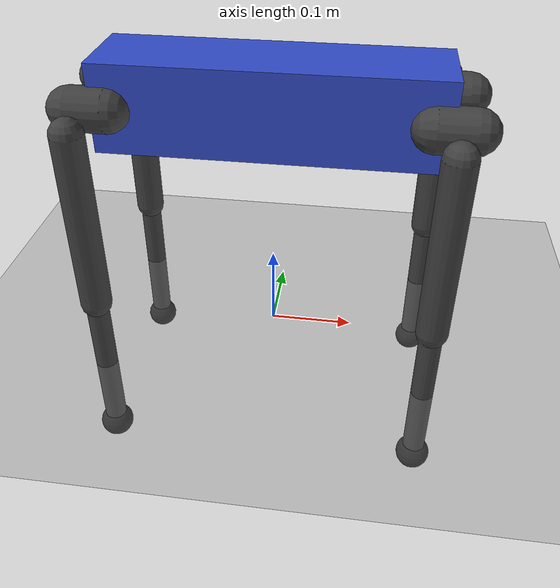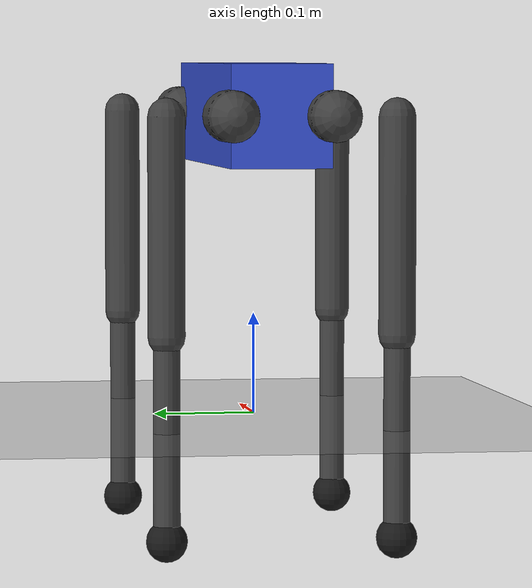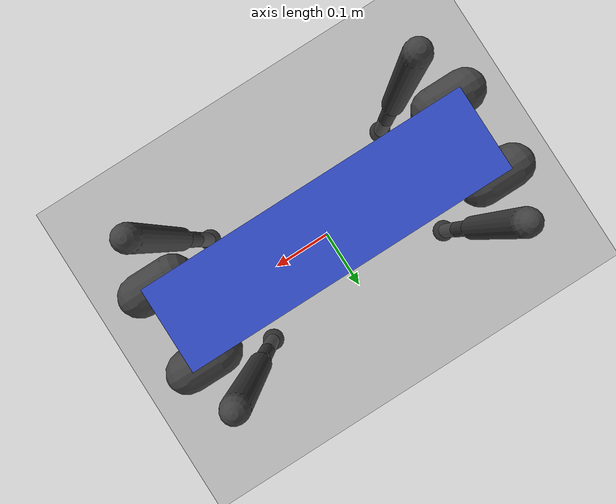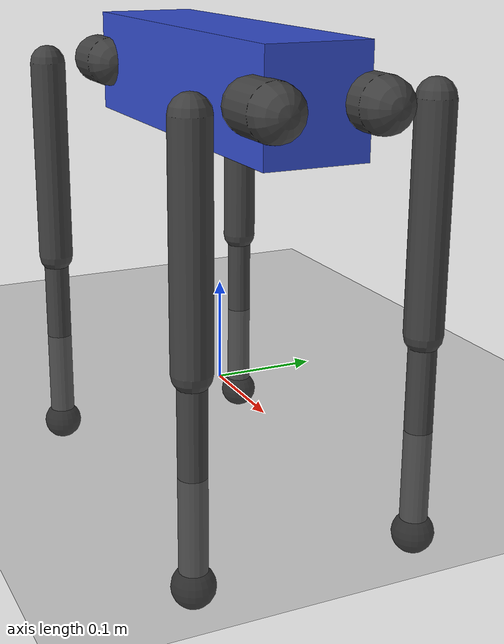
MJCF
<?xml version="1.0" encoding="utf-8"?>
<mujoco model="mini_cheetah">
  <compiler angle="radian" autolimits="true" balanceinertia="true"/>

  <option timestep="0.002" gravity="0 0 -9.81" iterations="50" solver="Newton" cone="elliptic"/>

  <visual>
    <headlight ambient="0.5 0.5 0.5" diffuse="0.8 0.8 0.8" specular="0.1 0.1 0.1"/>
    <map force="0.1" zfar="30"/>
    <quality shadowsize="2048"/>
  </visual>

  <asset>
    <texture type="skybox" builtin="gradient" rgb1="0.4 0.6 0.8" rgb2="0.05 0.05 0.2" width="100" height="100"/>
    <texture name="floor_tex" type="2d" builtin="checker" rgb1="0.6 0.6 0.6" rgb2="0.4 0.4 0.4" width="300" height="300"/>
    <material name="floor_mat" texture="floor_tex" texrepeat="10 10" specular="0.5" shininess="0.3" reflectance="0.1"/>
    <material name="body_mat" rgba="0.2 0.3 0.8 1" specular="0.5" shininess="0.8"/>
    <material name="leg_mat" rgba="0.25 0.25 0.25 1" specular="0.3" shininess="0.5"/>
    <material name="foot_mat" rgba="0.1 0.1 0.1 1" specular="0.2" shininess="0.3"/>
  </asset>

  <default>
    <joint limited="true" armature="0.01" damping="0.01"/>
    <geom condim="6" friction="0.8 0.02 0.01" margin="0.001"/>
    <!-- Abad/hip motors: 3 Nm * gear 6 = 18 Nm max -->
    <motor ctrllimited="true" ctrlrange="-18.0 18.0"/>
  </default>

  <worldbody>
    <light name="top" pos="0 0 3" dir="0 0 -1" directional="true" diffuse="0.8 0.8 0.8" specular="0.2 0.2 0.2"/>
    <light name="front" pos="2 -2 2" dir="-1 1 -1" diffuse="0.3 0.3 0.3"/>
    <geom name="floor" type="plane" size="50 50 0.1" material="floor_mat" condim="6" friction="1.0 0.005 0.0001"/>

    <!-- Robot body: 3.3 kg, inertia from CAD -->
    <body name="base" pos="0 0 0.300">
      <freejoint name="root"/>
      <inertial pos="0 0 0" mass="3.3" fullinertia="0.011253 0.036203 0.042673 0 0 0"/>
      <geom name="body_box" type="box" size="0.1900 0.0490 0.0500" material="body_mat" contype="0" conaffinity="0"/>
      <site name="imu_site" pos="0 0 0" size="0.01"/>

      <!-- FR leg (Front Right): y-negative side                        -->
      <!-- Abad at (bodyLength/2, -bodyWidth/2, 0) = (0.19, -0.049, 0) -->
      <body name="FR_hip" pos="0.1900 -0.0490 0">
        <inertial pos="0 -0.036 0" mass="0.54" fullinertia="0.000381 0.000560 0.000444 0.000058 0.00000045 0.00000095"/>
        <joint name="FR_hip_abduct" axis="1 0 0" range="-0.523 0.523" damping="0.01" armature="0.01"/>
        <geom name="FR_hip_geom" type="capsule" size="0.025 0.02" quat="0.707 0 0.707 0" material="leg_mat" contype="0" conaffinity="0"/>

        <body name="FR_thigh" pos="0 -0.0620 0">
          <inertial pos="0 -0.016 -0.02" mass="0.634" fullinertia="0.001983 0.002103 0.000408 0.000245 0.000013 0.0000015"/>
          <joint name="FR_hip_rotate" axis="0 1 0" range="-1.047 1.047" damping="0.01" armature="0.01"/>
          <geom name="FR_thigh_geom" type="capsule" fromto="0 0 0 0 0 -0.2090" size="0.018" material="leg_mat" contype="0" conaffinity="0"/>

          <body name="FR_shin" pos="0 0 -0.2090">
            <inertial pos="0 0 -0.061" mass="0.064" fullinertia="0.000248 0.000245 0.000006 0 0 0"/>
            <joint name="FR_knee" axis="0 1 0" range="-2.697 -0.524" damping="0.01" armature="0.01"/>
            <geom name="FR_shin_geom" type="capsule" fromto="0 0 0 0 0 -0.1950" size="0.013" material="leg_mat" contype="0" conaffinity="0"/>

            <body name="FR_foot" pos="0 0 -0.1950">
              <inertial pos="0 0 0" mass="0.01" diaginertia="0.000001 0.000001 0.000001"/>
              <geom name="FR_foot_geom" type="sphere" size="0.0200" material="foot_mat" condim="6" friction="1.5 0.005 0.0001" solimp="0.9 0.95 0.001" solref="0.02 1"/>
              <site name="FR_foot_site" pos="0 0 0" size="0.01"/>
            </body>
          </body>
        </body>
      </body>

      <!-- FL leg (Front Left): y-positive side                         -->
      <!-- Abad at (bodyLength/2, +bodyWidth/2, 0) = (0.19, +0.049, 0) -->
      <body name="FL_hip" pos="0.1900 0.0490 0">
        <inertial pos="0 0.036 0" mass="0.54" fullinertia="0.000381 0.000560 0.000444 0.000058 0.00000045 0.00000095"/>
        <joint name="FL_hip_abduct" axis="1 0 0" range="-0.523 0.523" damping="0.01" armature="0.01"/>
        <geom name="FL_hip_geom" type="capsule" size="0.025 0.02" quat="0.707 0 0.707 0" material="leg_mat" contype="0" conaffinity="0"/>

        <body name="FL_thigh" pos="0 0.0620 0">
          <inertial pos="0 0.016 -0.02" mass="0.634" fullinertia="0.001983 0.002103 0.000408 0.000245 0.000013 0.0000015"/>
          <joint name="FL_hip_rotate" axis="0 1 0" range="-1.047 1.047" damping="0.01" armature="0.01"/>
          <geom name="FL_thigh_geom" type="capsule" fromto="0 0 0 0 0 -0.2090" size="0.018" material="leg_mat" contype="0" conaffinity="0"/>

          <body name="FL_shin" pos="0 0 -0.2090">
            <inertial pos="0 0 -0.061" mass="0.064" fullinertia="0.000248 0.000245 0.000006 0 0 0"/>
            <joint name="FL_knee" axis="0 1 0" range="-2.697 -0.524" damping="0.01" armature="0.01"/>
            <geom name="FL_shin_geom" type="capsule" fromto="0 0 0 0 0 -0.1950" size="0.013" material="leg_mat" contype="0" conaffinity="0"/>

            <body name="FL_foot" pos="0 0 -0.1950">
              <inertial pos="0 0 0" mass="0.01" diaginertia="0.000001 0.000001 0.000001"/>
              <geom name="FL_foot_geom" type="sphere" size="0.0200" material="foot_mat" condim="6" friction="1.5 0.005 0.0001" solimp="0.9 0.95 0.001" solref="0.02 1"/>
              <site name="FL_foot_site" pos="0 0 0" size="0.01"/>
            </body>
          </body>
        </body>
      </body>

      <!-- RR leg (Rear Right): y-negative side                         -->
      <body name="RR_hip" pos="-0.1900 -0.0490 0">
        <inertial pos="0 -0.036 0" mass="0.54" fullinertia="0.000381 0.000560 0.000444 0.000058 0.00000045 0.00000095"/>
        <joint name="RR_hip_abduct" axis="1 0 0" range="-0.523 0.523" damping="0.01" armature="0.01"/>
        <geom name="RR_hip_geom" type="capsule" size="0.025 0.02" quat="0.707 0 0.707 0" material="leg_mat" contype="0" conaffinity="0"/>

        <body name="RR_thigh" pos="0 -0.0620 0">
          <inertial pos="0 -0.016 -0.02" mass="0.634" fullinertia="0.001983 0.002103 0.000408 0.000245 0.000013 0.0000015"/>
          <joint name="RR_hip_rotate" axis="0 1 0" range="-1.047 1.047" damping="0.01" armature="0.01"/>
          <geom name="RR_thigh_geom" type="capsule" fromto="0 0 0 0 0 -0.2090" size="0.018" material="leg_mat" contype="0" conaffinity="0"/>

          <body name="RR_shin" pos="0 0 -0.2090">
            <inertial pos="0 0 -0.061" mass="0.064" fullinertia="0.000248 0.000245 0.000006 0 0 0"/>
            <joint name="RR_knee" axis="0 1 0" range="-2.697 -0.524" damping="0.01" armature="0.01"/>
            <geom name="RR_shin_geom" type="capsule" fromto="0 0 0 0 0 -0.1950" size="0.013" material="leg_mat" contype="0" conaffinity="0"/>

            <body name="RR_foot" pos="0 0 -0.1950">
              <inertial pos="0 0 0" mass="0.01" diaginertia="0.000001 0.000001 0.000001"/>
              <geom name="RR_foot_geom" type="sphere" size="0.0200" material="foot_mat" condim="6" friction="1.5 0.005 0.0001" solimp="0.9 0.95 0.001" solref="0.02 1"/>
              <site name="RR_foot_site" pos="0 0 0" size="0.01"/>
            </body>
          </body>
        </body>
      </body>

      <!-- RL leg (Rear Left): y-positive side                          -->
      <body name="RL_hip" pos="-0.1900 0.0490 0">
        <inertial pos="0 0.036 0" mass="0.54" fullinertia="0.000381 0.000560 0.000444 0.000058 0.00000045 0.00000095"/>
        <joint name="RL_hip_abduct" axis="1 0 0" range="-0.523 0.523" damping="0.01" armature="0.01"/>
        <geom name="RL_hip_geom" type="capsule" size="0.025 0.02" quat="0.707 0 0.707 0" material="leg_mat" contype="0" conaffinity="0"/>

        <body name="RL_thigh" pos="0 0.0620 0">
          <inertial pos="0 0.016 -0.02" mass="0.634" fullinertia="0.001983 0.002103 0.000408 0.000245 0.000013 0.0000015"/>
          <joint name="RL_hip_rotate" axis="0 1 0" range="-1.047 1.047" damping="0.01" armature="0.01"/>
          <geom name="RL_thigh_geom" type="capsule" fromto="0 0 0 0 0 -0.2090" size="0.018" material="leg_mat" contype="0" conaffinity="0"/>

          <body name="RL_shin" pos="0 0 -0.2090">
            <inertial pos="0 0 -0.061" mass="0.064" fullinertia="0.000248 0.000245 0.000006 0 0 0"/>
            <joint name="RL_knee" axis="0 1 0" range="-2.697 -0.524" damping="0.01" armature="0.01"/>
            <geom name="RL_shin_geom" type="capsule" fromto="0 0 0 0 0 -0.1950" size="0.013" material="leg_mat" contype="0" conaffinity="0"/>

            <body name="RL_foot" pos="0 0 -0.1950">
              <inertial pos="0 0 0" mass="0.01" diaginertia="0.000001 0.000001 0.000001"/>
              <geom name="RL_foot_geom" type="sphere" size="0.0200" material="foot_mat" condim="6" friction="1.5 0.005 0.0001" solimp="0.9 0.95 0.001" solref="0.02 1"/>
              <site name="RL_foot_site" pos="0 0 0" size="0.01"/>
            </body>
          </body>
        </body>
      </body>
    </body>
  </worldbody>

  <actuator>
    <!-- Abad/hip: 3 Nm * gear 6 = 18 Nm; Knee: 3 Nm * gear 9.33 = 28 Nm -->
    <motor name="FR_hip_abduct_motor" joint="FR_hip_abduct" gear="1" ctrlrange="-18.0 18.0"/>
    <motor name="FR_hip_rotate_motor" joint="FR_hip_rotate" gear="1" ctrlrange="-18.0 18.0"/>
    <motor name="FR_knee_motor"       joint="FR_knee"        gear="1" ctrlrange="-28.0 28.0"/>
    <motor name="FL_hip_abduct_motor" joint="FL_hip_abduct" gear="1" ctrlrange="-18.0 18.0"/>
    <motor name="FL_hip_rotate_motor" joint="FL_hip_rotate" gear="1" ctrlrange="-18.0 18.0"/>
    <motor name="FL_knee_motor"       joint="FL_knee"        gear="1" ctrlrange="-28.0 28.0"/>
    <motor name="RR_hip_abduct_motor" joint="RR_hip_abduct" gear="1" ctrlrange="-18.0 18.0"/>
    <motor name="RR_hip_rotate_motor" joint="RR_hip_rotate" gear="1" ctrlrange="-18.0 18.0"/>
    <motor name="RR_knee_motor"       joint="RR_knee"        gear="1" ctrlrange="-28.0 28.0"/>
    <motor name="RL_hip_abduct_motor" joint="RL_hip_abduct" gear="1" ctrlrange="-18.0 18.0"/>
    <motor name="RL_hip_rotate_motor" joint="RL_hip_rotate" gear="1" ctrlrange="-18.0 18.0"/>
    <motor name="RL_knee_motor"       joint="RL_knee"        gear="1" ctrlrange="-28.0 28.0"/>
  </actuator>

  <sensor>
    <framelinvel name="base_linvel" objtype="site" objname="imu_site"/>
    <frameangvel name="base_angvel" objtype="site" objname="imu_site"/>
    <framequat name="base_quat" objtype="site" objname="imu_site"/>
    <accelerometer name="base_accel" site="imu_site"/>
    <gyro name="base_gyro" site="imu_site"/>
  </sensor>
</mujoco>
